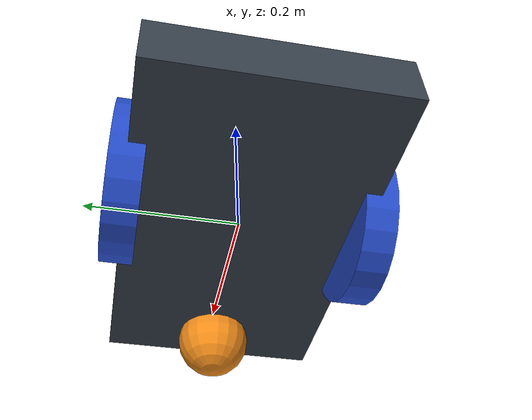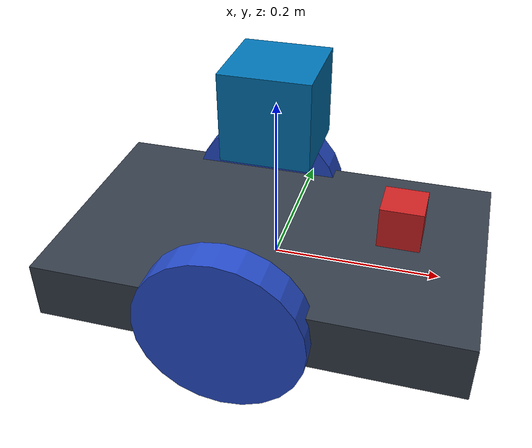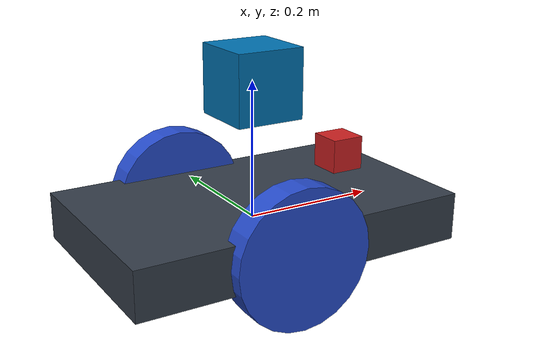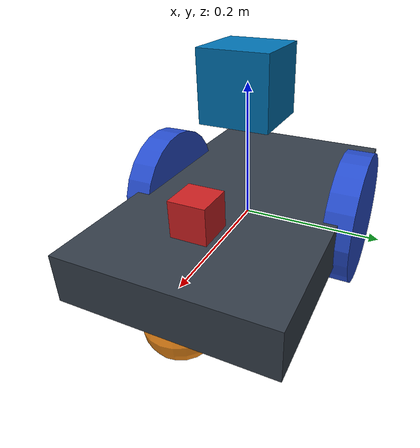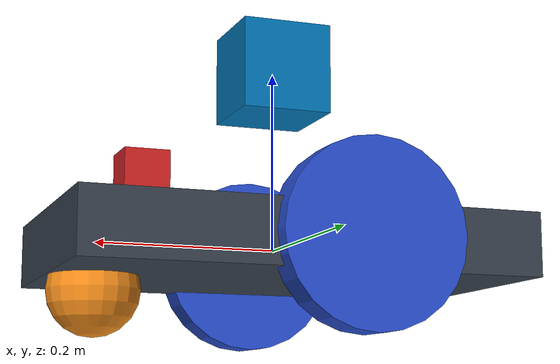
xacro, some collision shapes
<?xml version="1.0" ?>
<robot name="sbot" xmlns:xacro="http://www.ros.org/wiki/xacro">

  <!--Use plug-in from .gazebo file-->
  <xacro:include filename="$(find sbot_description)/urdf/sbot.gazebo"/>

  <!--init size of the camera-->
  <xacro:property name="link_camera" value="0.05" /> <!-- Size of square 'camera' box -->

  <!--init the material using in urdf-->
  <material name="black">
    <color rgba="0.0 0.0 0.0 1.0"/>
  </material>
  <material name="blue">
    <color rgba="0.203125 0.23828125 0.28515625 1.0"/>
  </material>
  <material name="green">
    <color rgba="0.0 0.8 0.0 1.0"/>
  </material>
  <material name="grey">
    <color rgba="0.2 0.2 0.2 1.0"/>
  </material>
  <material name="orange">
    <color rgba="1.0 0.423529411765 0.0392156862745 1.0"/>
  </material>
  <material name="brown">
    <color rgba="0.870588235294 0.811764705882 0.764705882353 1.0"/>
  </material>
  <material name="red">
    <color rgba="0.80078125 0.12890625 0.1328125 1.0"/>
  </material>
  <material name="white">
    <color rgba="1.0 1.0 1.0 1.0"/>
  </material>

  <!--Set up link as color from material-->
  <gazebo reference="link_chassis">
    <material>Gazebo/Orange</material>
  </gazebo>
  <gazebo reference="link_left_wheel">
    <material>Gazebo/Blue</material>
  </gazebo>
  <gazebo reference="link_right_wheel">
    <material>Gazebo/Blue</material>
  </gazebo>

  <!--Set up link and joint in link Chassis-->
  <link name="link_chassis">
    <!-- pose and inertial -->
    <pose>0 0 0.1 0 0 0</pose>
    <inertial>
      <mass value="5"/>
      <origin rpy="0 0 0" xyz="0 0 0.1"/>
      <inertia ixx="0.0395416666667" ixy="0" ixz="0" iyy="0.106208333333" iyz="0" izz="0.106208333333"/>
    </inertial>
    <!-- body -->
    <collision name="collision_chassis">
      <geometry>
        <box size="0.5 0.3 0.07"/>
      </geometry>
    </collision>
    <visual>
      <origin rpy="0 0 0" xyz="0 0 0"/>
      <geometry>
        <box size="0.5 0.3 0.07"/>
      </geometry>
      <material name="blue"/>
    </visual>
    <!-- caster front -->
    <collision name="caster_front_collision">
      <origin rpy=" 0 0 0" xyz="0.35 0 -0.05"/>
      <geometry>
        <sphere radius="0.05"/>
      </geometry>
      <surface>
        <friction>
          <ode>
            <mu>0</mu>
            <mu2>0</mu2>
            <slip1>1.0</slip1>
            <slip2>1.0</slip2>
          </ode>
        </friction>
      </surface>
    </collision>
    <visual name="caster_front_visual">
      <origin rpy=" 0 0 0" xyz="0.2 0 -0.05"/>
      <geometry>
        <sphere radius="0.05"/>
      </geometry>
    </visual>
  </link>

  <!--Set up link and joint in right wheel-->
  <link name="link_right_wheel">
    <inertial>
      <mass value="0.2"/>
      <origin rpy="0 1.5707 1.5707" xyz="0 0 0"/>
      <inertia ixx="0.000526666666667" ixy="0" ixz="0" iyy="0.000526666666667" iyz="0" izz="0.001"/>
    </inertial>
    <collision name="link_right_wheel_collision">
      <origin rpy="0 1.5707 1.5707" xyz="0 0 0"/>
      <geometry>
        <cylinder length="0.04" radius="0.1"/>
      </geometry>
    </collision>
    <visual name="link_right_wheel_visual">
      <origin rpy="0 1.5707 1.5707" xyz="0 0 0"/>
      <geometry>
        <cylinder length="0.04" radius="0.1"/>
      </geometry>
    </visual>
  </link>

  <!--Set up joint as continuous because we want to make wheel move freely along joint-->
  <joint name="joint_right_wheel" type="continuous">
    <origin rpy="0 0 0" xyz="-0.05 0.15 0"/>
    <child link="link_right_wheel"/>
    <parent link="link_chassis"/>
    <axis rpy="0 0 0" xyz="0 1 0"/>
    <limit effort="10000" velocity="1000"/>
    <joint_properties damping="1.0" friction="1.0"/>
  </joint>

  <!--Set up link and joint in left wheel-->
  <link name="link_left_wheel">
    <inertial>
      <mass value="0.2"/>
      <origin rpy="0 1.5707 1.5707" xyz="0 0 0"/>
      <inertia ixx="0.000526666666667" ixy="0" ixz="0" iyy="0.000526666666667" iyz="0" izz="0.001"/>
    </inertial>
    <collision name="link_left_wheel_collision">
      <origin rpy="0 1.5707 1.5707" xyz="0 0 0"/>
      <geometry>
        <cylinder length="0.04" radius="0.1"/>
      </geometry>
    </collision>
    <visual name="link_left_wheel_visual">
      <origin rpy="0 1.5707 1.5707" xyz="0 0 0"/>
      <geometry>
        <cylinder length="0.04" radius="0.1"/>
      </geometry>
    </visual>
  </link>

  <!--Set up joint as continuous because we want to make wheel move freely along joint-->
  <joint name="joint_left_wheel" type="continuous">
    <origin rpy="0 0 0" xyz="-0.02 -0.15 0"/>
    <child link="link_left_wheel"/>
    <parent link="link_chassis"/>
    <axis rpy="0 0 0" xyz="0 1 0"/>
    <limit effort="10000" velocity="1000"/>
    <joint_properties damping="1.0" friction="1.0"/>
  </joint>

  <!-- Camera -->
  <link name="link_camera">
    <collision>
      <origin xyz="0 0 0" rpy="0 0 0"/>
      <geometry>
      <box size="${link_camera} ${link_camera} ${link_camera}"/>
      </geometry>
    </collision>

    <visual>
      <origin xyz="0 0 0" rpy="0 0 0"/>
      <geometry>
      <box size="${link_camera} ${link_camera} ${link_camera}"/>
      </geometry>
      <material name="red"/>
    </visual>

    <inertial>
      <mass value="1e-5" />
      <origin xyz="0 0 0" rpy="0 0 0"/>
      <inertia ixx="1e-6" ixy="0" ixz="0" iyy="1e-6" iyz="0" izz="1e-6" />
    </inertial>
  </link>

  <!--Set up joint as fixed because we want to camera fixed with link not moving around-->
  <joint name="joint_camera" type="fixed">
    <axis xyz="0 1 0" />
    <origin xyz="0.15 0 0.075" rpy="0 0 0"/>
    <parent link="link_chassis"/> <!--we want camera fixed with body frame so we have to fixed with link_chassis-->
    <child link="link_camera"/>
  </joint>

  <!-- Hokuyo Laser -->
  <link name="hokuyo_link">
    <collision>
      <origin xyz="0 0 0" rpy="0 0 0"/>
      <geometry>
    <box size="0.1 0.1 0.1"/>
      </geometry>
    </collision>

    <!--using hokuyo.dae to show mesh of laser scanner-->
    <visual>
      <origin xyz="0 0 0" rpy="0 0 0"/>
      <geometry>
        <mesh filename="package://sbot_description/meshes/hokuyo.dae"/>
      </geometry>
    </visual>

    <inertial>
      <mass value="1e-5" />
      <origin xyz="0 0 0" rpy="0 0 0"/>
      <inertia ixx="1e-6" ixy="0" ixz="0" iyy="1e-6" iyz="0" izz="1e-6" />
    </inertial>
  </link>

  <!--Set up joint as fixed because we want to laser scanner fixed with link not moving around-->
  <joint name="hokuyo_joint" type="fixed">
    <axis xyz="0 1 0" />
    <origin xyz="0 0 0.2" rpy="0 0 0"/>
    <parent link="link_chassis"/> <!--we want laser scanner fixed with body frame so we have to fixed with link_chassis-->
    <child link="hokuyo_link"/>
  </joint>

</robot>
